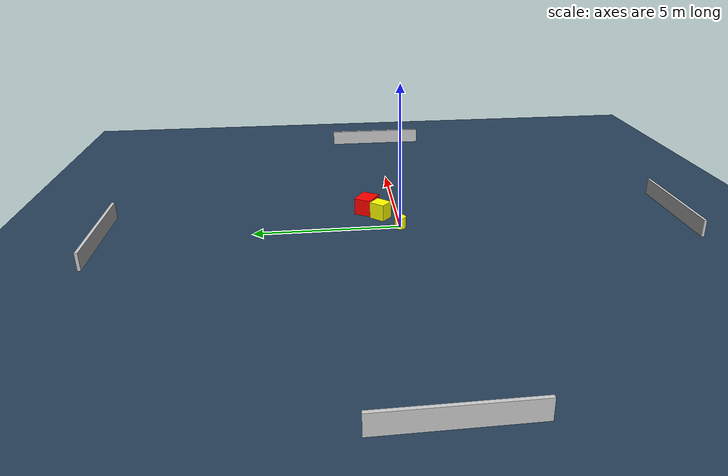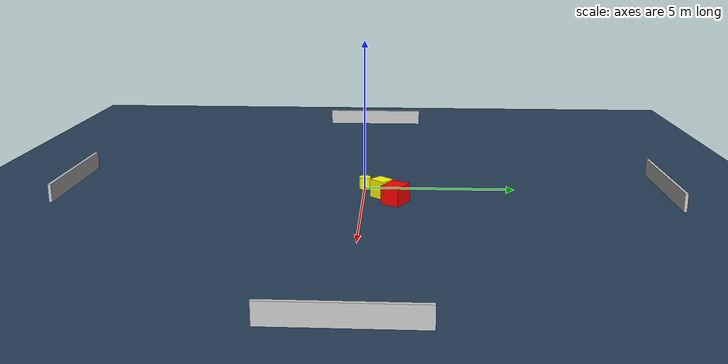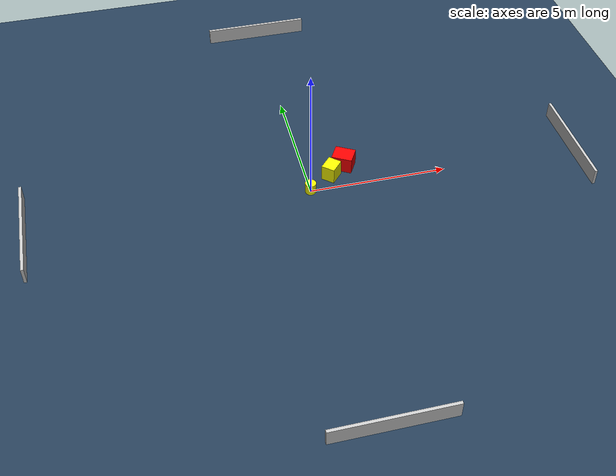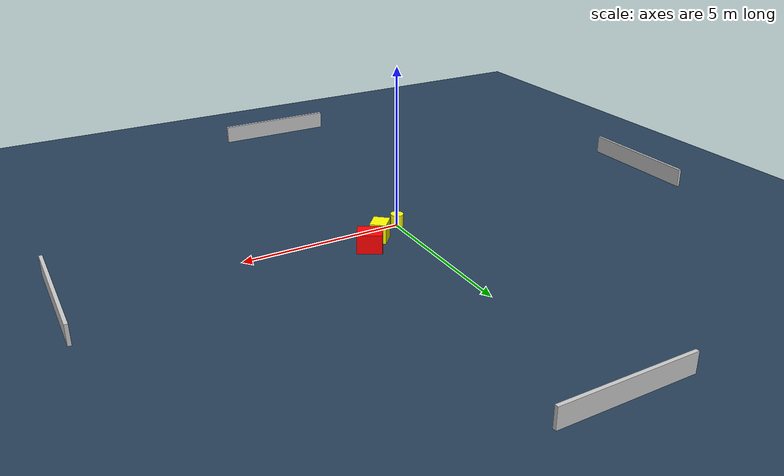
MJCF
<?xml version="1.0" ?>
<mujoco model="generated_environment">
  <option timestep="0.01" integrator="RK4" cone="elliptic"/>
  <default>
    <geom density="1"/>
  </default>
  <asset>
    <texture builtin="gradient" height="3072" name="skybox" rgb1="0.3 0.5 0.7" rgb2="0 0 0" type="skybox" width="512"/>
    <texture builtin="checker" height="300" name="groundplane" rgb1="0.2 0.3 0.4" rgb2="0.1 0.2 0.3" type="2d" width="300"/>
    <material name="groundplane" reflectance="0.2" texrepeat="5 5" texture="groundplane"/>
  </asset>
  <worldbody>
    <light dir="0 0 -1" directional="true" pos="0 0 1.5"/>
    <geom condim="3" friction="0.5 0.005 0.001" material="groundplane" name="floor" pos="0 0 0" size="0 0 0.05" type="plane"/>
    <body name="walls">
      <geom name="wall_1" condim="4" pos="-10.0 0.0 0.3" rgba="0.800000011920929 0.800000011920929 0.800000011920929 1.0" size="0.05 2.0 0.3" type="box"/>
      <geom name="wall_2" condim="4" pos="10.0 0.0 0.3" rgba="0.800000011920929 0.800000011920929 0.800000011920929 1.0" size="0.05 2.0 0.3" type="box"/>
      <geom name="wall_3" condim="4" pos="0.0 -10.0 0.3" rgba="0.800000011920929 0.800000011920929 0.800000011920929 1.0" size="2.0 0.05 0.3" type="box"/>
      <geom name="wall_4" condim="4" pos="0.0 10.0 0.3" rgba="0.800000011920929 0.800000011920929 0.800000011920929 1.0" size="2.0 0.05 0.3" type="box"/>
    </body>
    <body name="robot">
      <joint name="joint_x" type="slide" pos="0 0 0" axis="1 0 0"/>
      <joint name="joint_y" type="slide" pos="0 0 0" axis="0 1 0"/>
      <geom name="robot" type="cylinder" pos="0.0 0.0 0.2" size="0.2 0.2 0.0" mass="5.0" friction="1.0 0.005 0.0001" condim="4" rgba="1.0 1.0 0.0 1.0"/>
    </body>
    <body name="obstacle_1_movable">
      <geom name="obstacle_1_movable" condim="4" pos="0.9155199860978145 0.595947299657239 0.3" euler="0 0 318.5520819448795" friction="0.0 0.005 0.001" rgba="1.0 1.0 0.0 1.0" size="0.24737190375024865 0.28945321331241736 0.3" type="box" mass="0.1"/>
      <joint type="free"/>
    </body>
    <body name="obstacle_2_static">
      <geom name="obstacle_2_static" condim="4" pos="1.486440636253892 1.0392565331031083 0.3" euler="0 0 240.15414746370948" friction="0.0 0.005 0.001" rgba="1.0 0.0 0.0 1.0" size="0.3131610529490777 0.3751043989291041 0.3" type="box"/>
    </body>
  </worldbody>
  <actuator>
    <motor name="actuator_x" joint="joint_x" gear="1" ctrlrange="-1 1"/>
    <motor name="actuator_y" joint="joint_y" gear="1" ctrlrange="-1 1"/>
  </actuator>
</mujoco>
